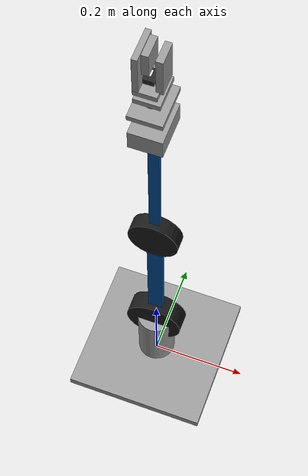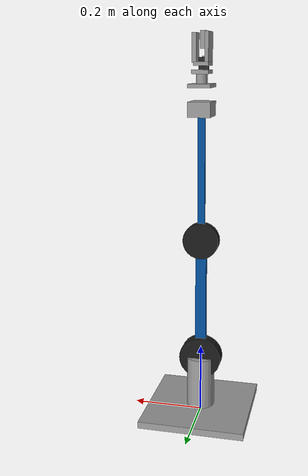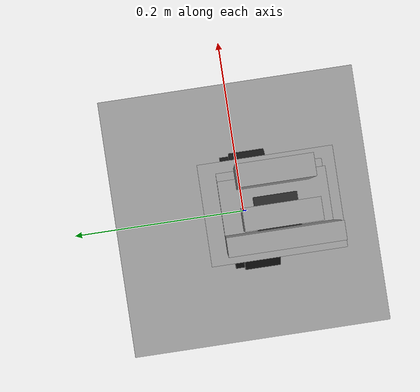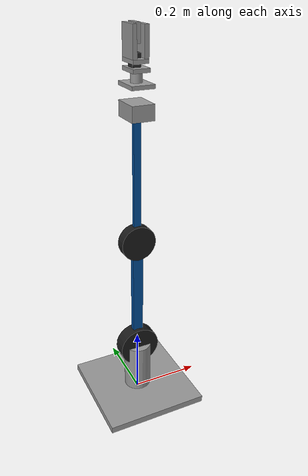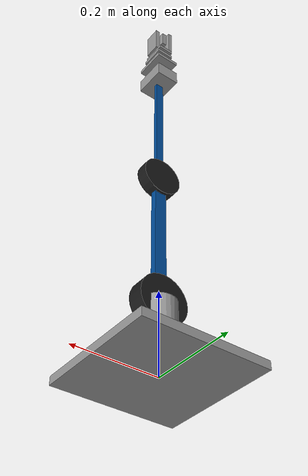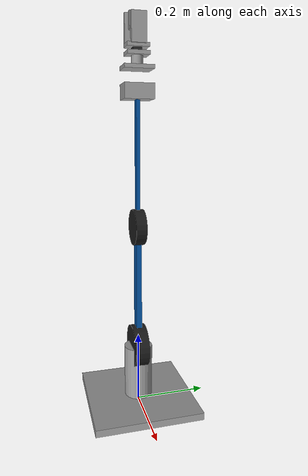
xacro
<?xml version="1.0"?>
<robot xmlns:xacro="http://www.ros.org/wiki/xacro" name="custom_arm">

  <xacro:property name="base_plate_side" value="0.3"/>
  <xacro:property name="base_plate_thick" value="0.02"/>
  <xacro:property name="yaw_column_radius" value="0.04"/>
  <xacro:property name="yaw_column_height" value="0.15"/>
  <xacro:property name="arm_length" value="0.35"/>
  <xacro:property name="PI" value="3.14159265359"/>

  <material name="metal_grey"><color rgba="0.6 0.6 0.6 1.0"/></material>
  <material name="aluminium_blue"><color rgba="0.0 0.3 0.6 1.0"/></material>
  <material name="black"><color rgba="0.1 0.1 0.1 1.0"/></material>
  <material name="servo_plastic"><color rgba="0.15 0.15 0.15 1.0"/></material>
  <material name="horn_white"><color rgba="0.9 0.9 0.9 1.0"/></material>

  <xacro:macro name="dummy_inertia" params="mass">
    <inertial>
      <mass value="${mass}"/>
      <inertia ixx="${mass * 0.01}" ixy="0.0" ixz="0.0" iyy="${mass * 0.01}" iyz="0.0" izz="${mass * 0.01}"/>
    </inertial>
  </xacro:macro>

  <link name="world"/>

  <joint name="world_to_base" type="fixed">
    <parent link="world"/>
    <child link="base_plate_link"/>
    <origin xyz="0 0 0" rpy="0 0 0"/>
  </joint>

  <link name="base_plate_link">
    <visual>
      <geometry><box size="${base_plate_side} ${base_plate_side} ${base_plate_thick}"/></geometry>
      <origin xyz="0 0 ${base_plate_thick/2}" rpy="0 0 0"/>
      <material name="metal_grey"/>
    </visual>
    <collision>
      <geometry><box size="${base_plate_side} ${base_plate_side} ${base_plate_thick}"/></geometry>
      <origin xyz="0 0 ${base_plate_thick/2}" rpy="0 0 0"/>
    </collision>
    <xacro:dummy_inertia mass="5.0"/>
  </link>

  <joint name="base_yaw_joint" type="revolute">
    <parent link="base_plate_link"/>
    <child link="base_yaw_column_link"/>
    <origin xyz="0 0 ${base_plate_thick}" rpy="0 0 0"/>
    <axis xyz="0 0 1"/>
    <limit lower="-${PI}" upper="${PI}" effort="100.0" velocity="1.0"/>
  </joint>

  <link name="base_yaw_column_link">
    <visual>
      <geometry><cylinder radius="${yaw_column_radius}" length="${yaw_column_height}"/></geometry>
      <origin xyz="0 0 ${yaw_column_height/2}" rpy="0 0 0"/>
      <material name="metal_grey"/>
    </visual>
    <collision>
      <geometry><cylinder radius="${yaw_column_radius}" length="${yaw_column_height}"/></geometry>
      <origin xyz="0 0 ${yaw_column_height/2}" rpy="0 0 0"/>
    </collision>
    <xacro:dummy_inertia mass="3.0"/>
  </link>

  <joint name="shoulder_joint" type="revolute">
    <parent link="base_yaw_column_link"/>
    <child link="upper_arm_link"/>
    <origin xyz="0 0 ${yaw_column_height}" rpy="0 0 0"/>
    <axis xyz="0 1 0"/>
    <limit lower="-${PI/2}" upper="${PI/2}" effort="150.0" velocity="1.0"/>
  </joint>

  <link name="upper_arm_link">
    <visual>
      <geometry><cylinder radius="0.06" length="0.04"/></geometry>
      <origin xyz="0 0 0" rpy="1.5707 0 0"/>
      <material name="black"/>
    </visual>
    <visual>
      <geometry><box size="0.03 0.015 ${arm_length}"/></geometry>
      <origin xyz="0 0 ${arm_length/2}" rpy="0 0 0"/>
      <material name="aluminium_blue"/>
    </visual>
    <collision>
      <geometry>
        <box size="0.05 0.05 ${arm_length}"/>
      </geometry>
        <origin xyz="0 0 ${arm_length/2}" rpy="0 0 0"/>
    </collision>
    <xacro:dummy_inertia mass="1.5"/>
  </link>

  <joint name="elbow_joint" type="revolute">
    <parent link="upper_arm_link"/>
    <child link="forearm_link"/>
    <origin xyz="0 0 ${arm_length}" rpy="0 0 0"/>
    <axis xyz="0 1 0"/>
    <limit lower="-${PI*0.75}" upper="${PI*0.75}" effort="100.0" velocity="1.5"/>
  </joint>

  <link name="forearm_link">
    <visual>
      <geometry><cylinder radius="0.05" length="0.03"/></geometry>
      <origin xyz="0 0 0" rpy="1.5707 0 0"/>
      <material name="black"/>
    </visual>
    <visual>
      <geometry><box size="0.02 0.01 ${arm_length}"/></geometry>
      <origin xyz="0 0 ${arm_length/2}" rpy="0 0 0"/>
      <material name="aluminium_blue"/>
    </visual>
    <collision>
      <geometry>
        <box size="0.04 0.04 ${arm_length}"/>
      </geometry>
        <origin xyz="0 0 ${arm_length/2}" rpy="0 0 0"/>
    </collision>
    <xacro:dummy_inertia mass="1.0"/>
  </link>

  <joint name="wrist_pitch_joint" type="revolute">
    <parent link="forearm_link"/>
    <child link="wrist_bracket_link"/>
    <origin xyz="0 0 ${arm_length}" rpy="0 0 0"/>
    <axis xyz="0 1 0"/>
    <limit lower="-${PI/2}" upper="${PI/2}" effort="40.0" velocity="2.0"/>
  </joint>

  <link name="wrist_bracket_link">
    <visual>
      <geometry><box size="0.06 0.08 0.04"/></geometry>
      <origin xyz="0 0 0.01" rpy="0 0 0"/>
      <material name="metal_grey"/>
    </visual>
    <visual>
      <geometry><box size="0.06 0.08 0.01"/></geometry>
      <origin xyz="0 0 0.07" rpy="0 0 0"/>
      <material name="metal_grey"/>
    </visual>
    <collision>
      <geometry>
        <box size="0.08 0.08 0.08"/>
      </geometry>
      <origin xyz="0 0 0.04" rpy="0 0 0"/>
    </collision>
    <xacro:dummy_inertia mass="0.5"/>
  </link>

  <joint name="wrist_roll_joint" type="revolute">
    <parent link="wrist_bracket_link"/>
    <child link="wrist_output_shaft_link"/>
    <origin xyz="0 0 0.07" rpy="0 0 0"/>
    <axis xyz="0 0 1"/>
    <limit lower="-${PI}" upper="${PI}" effort="40.0" velocity="2.0"/>
  </joint>

  <link name="wrist_output_shaft_link">
    <visual>
      <geometry><cylinder radius="0.015" length="0.03"/></geometry>
      <origin xyz="0 0 0.015" rpy="0 0 0"/>
      <material name="metal_grey"/>
    </visual>
    <collision>
      <geometry><cylinder radius="0.015" length="0.03"/></geometry>
      <origin xyz="0 0 0.015" rpy="0 0 0"/>
    </collision>
    <xacro:dummy_inertia mass="0.2"/>
  </link>

  <joint name="gripper_mount_joint" type="fixed">
    <parent link="wrist_output_shaft_link"/>
    <child link="gripper_base_link"/>
    <origin xyz="0 0 0.03" rpy="0 0 0"/>
  </joint>

  <link name="gripper_base_link">
    <visual>
      <geometry><box size="0.045 0.06 0.01"/></geometry>
      <origin xyz="0 0 0.005" rpy="0 0 0"/>
      <material name="metal_grey"/>
    </visual>
    <visual>
      <geometry><box size="0.022 0.024 0.032"/></geometry>
      <origin xyz="-0.005 0 0.026" rpy="0 0 0"/>
      <material name="servo_plastic"/>
    </visual>
    <visual>
      <geometry><box size="0.012 0.04 0.075"/></geometry>
      <origin xyz="0.0175 0 0.065" rpy="0 0 0"/>
      <material name="metal_grey"/>
    </visual>
    <collision>
      <geometry>
        <box size="0.06 0.08 0.08"/>
      </geometry>
      <origin xyz="0 0 0.04" rpy="0 0 0"/>
    </collision>
    <xacro:dummy_inertia mass="0.15"/>
  </link>

  <joint name="gripper_servo_joint" type="revolute">
    <parent link="gripper_base_link"/>
    <child link="moving_finger_link"/>
    <origin xyz="-0.005 0 0.035" rpy="0 0 0"/>
    <axis xyz="0 1 0"/>
    <limit lower="-0.6" upper="0.0" effort="20.0" velocity="1.0"/>
  </joint>

  <link name="moving_finger_link">
    <visual>
      <geometry><box size="0.008 0.012 0.015"/></geometry>
      <origin xyz="0 0 0.0025" rpy="0 0 0"/>
      <material name="horn_white"/>
    </visual>
    <visual>
      <geometry><box size="0.01 0.06 0.075"/></geometry>
      <origin xyz="-0.0125 0 0.0325" rpy="0 0 0"/>
      <material name="metal_grey"/>
    </visual>
    <visual>
      <geometry><box size="0.04 0.06 0.01"/></geometry>
      <origin xyz="0.0025 0 -0.01" rpy="0 0 0"/>
      <material name="metal_grey"/>
    </visual>
    <visual>
      <geometry><box size="0.012 0.04 0.045"/></geometry>
      <origin xyz="0 0 0.05" rpy="0 0 0"/>
      <material name="metal_grey"/>
    </visual>
    <collision>
      <geometry>
        <box size="0.04 0.06 0.10"/>
      </geometry>
      <origin xyz="0 0 0.05" rpy="0 0 0"/>
    </collision>
    <xacro:dummy_inertia mass="0.1"/>
  </link>

 <ros2_control name="CustomArmSystem" type="system">
   <hardware>
     <plugin>gz_ros2_control/GazeboSimSystem</plugin>
   </hardware>
   <joint name="base_yaw_joint">
     <command_interface name="position"/><state_interface name="position"/><state_interface name="velocity"/>
   </joint>
   <joint name="shoulder_joint">
     <command_interface name="position"/><state_interface name="position"/><state_interface name="velocity"/>
   </joint>
   <joint name="elbow_joint">
     <command_interface name="position"/><state_interface name="position"/><state_interface name="velocity"/>
   </joint>
   <joint name="wrist_pitch_joint">
     <command_interface name="position"/><state_interface name="position"/><state_interface name="velocity"/>
   </joint>
   <joint name="wrist_roll_joint">
     <command_interface name="position"/><state_interface name="position"/><state_interface name="velocity"/>
   </joint>
   <joint name="gripper_servo_joint">
     <command_interface name="position"/><state_interface name="position"/><state_interface name="velocity"/>
   </joint>
 </ros2_control>
  <gazebo>
  <plugin
    filename="libgz_ros2_control-system.so"
    name="gz_ros2_control::GazeboSimROS2ControlPlugin">

    <parameters>
      $(find arm_humble)/config/controllers.yaml
    </parameters>

  </plugin>
</gazebo>
</robot>
